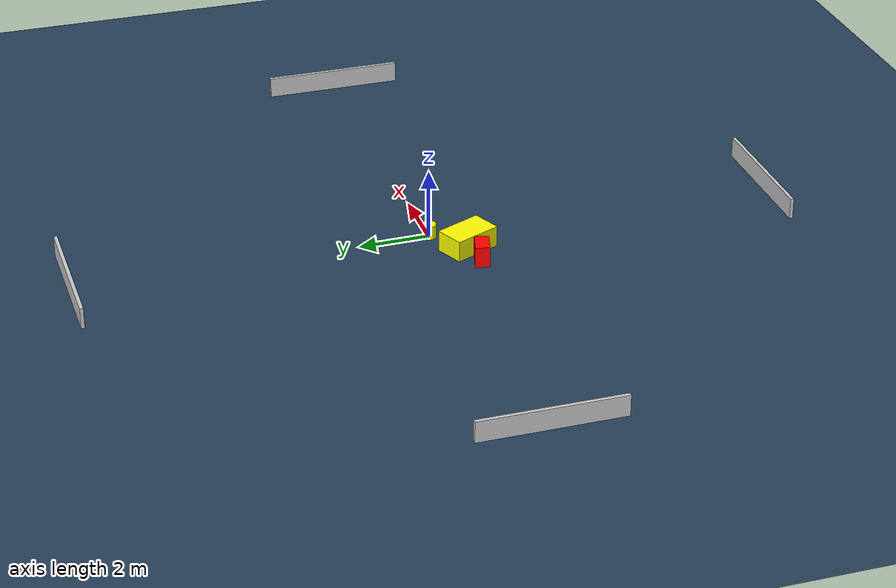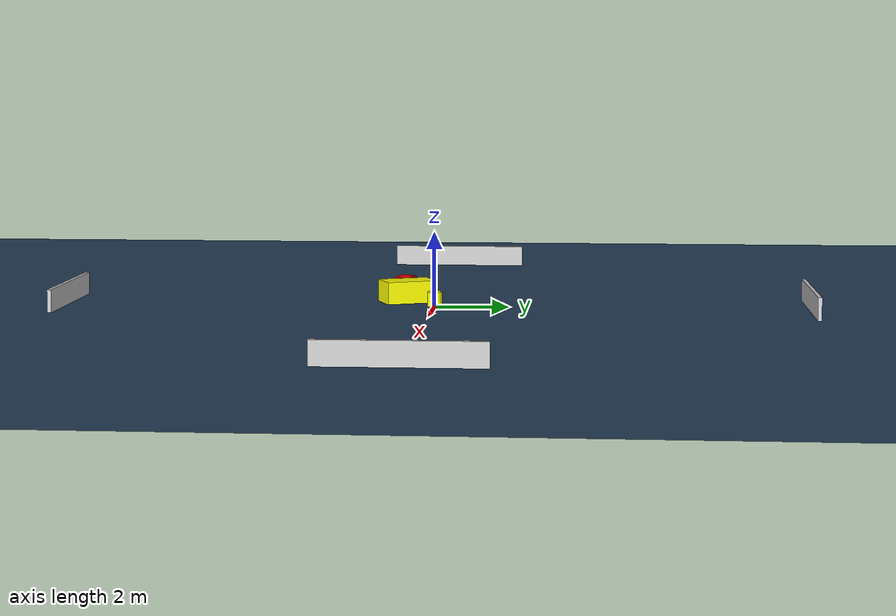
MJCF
<?xml version="1.0" ?>
<mujoco model="generated_environment">
  <option timestep="0.01" integrator="RK4" cone="elliptic"/>
  <default>
    <geom density="1"/>
  </default>
  <asset>
    <texture builtin="gradient" height="3072" name="skybox" rgb1="0.3 0.5 0.7" rgb2="0 0 0" type="skybox" width="512"/>
    <texture builtin="checker" height="300" name="groundplane" rgb1="0.2 0.3 0.4" rgb2="0.1 0.2 0.3" type="2d" width="300"/>
    <material name="groundplane" reflectance="0.2" texrepeat="5 5" texture="groundplane"/>
  </asset>
  <worldbody>
    <light dir="0 0 -1" directional="true" pos="0 0 1.5"/>
    <geom condim="3" friction="0.5 0.005 0.001" material="groundplane" name="floor" pos="0 0 0" size="0 0 0.05" type="plane"/>
    <body name="walls">
      <geom name="wall_1" condim="4" pos="-10.0 0.0 0.3" rgba="0.800000011920929 0.800000011920929 0.800000011920929 1.0" size="0.05 2.0 0.3" type="box"/>
      <geom name="wall_2" condim="4" pos="10.0 0.0 0.3" rgba="0.800000011920929 0.800000011920929 0.800000011920929 1.0" size="0.05 2.0 0.3" type="box"/>
      <geom name="wall_3" condim="4" pos="0.0 -10.0 0.3" rgba="0.800000011920929 0.800000011920929 0.800000011920929 1.0" size="2.0 0.05 0.3" type="box"/>
      <geom name="wall_4" condim="4" pos="0.0 10.0 0.3" rgba="0.800000011920929 0.800000011920929 0.800000011920929 1.0" size="2.0 0.05 0.3" type="box"/>
    </body>
    <body name="robot">
      <joint name="joint_x" type="slide" pos="0 0 0" axis="1 0 0"/>
      <joint name="joint_y" type="slide" pos="0 0 0" axis="0 1 0"/>
      <geom name="robot" type="cylinder" pos="0.0 0.0 0.2" size="0.2 0.2 0.0" mass="5.0" friction="1.0 0.005 0.0001" condim="4" rgba="1.0 1.0 0.0 1.0"/>
    </body>
    <body name="obstacle_1_movable">
      <geom name="obstacle_1_movable" condim="4" pos="-0.9257696247200526 -0.8229461958272515 0.3" euler="0 0 203.8470049368155" friction="0.0 0.005 0.001" rgba="1.0 1.0 0.0 1.0" size="0.42601432596655636 0.6911344232300355 0.3" type="box" mass="0.1"/>
      <joint type="free"/>
    </body>
    <body name="obstacle_2_static">
      <geom name="obstacle_2_static" condim="4" pos="-1.7508769771747925 -0.9575707974890758 0.3" euler="0 0 344.92264008361735" friction="0.0 0.005 0.001" rgba="1.0 0.0 0.0 1.0" size="0.3228905292845758 0.20313118051189943 0.3" type="box"/>
    </body>
  </worldbody>
  <actuator>
    <motor name="actuator_x" joint="joint_x" gear="1" ctrlrange="-1 1"/>
    <motor name="actuator_y" joint="joint_y" gear="1" ctrlrange="-1 1"/>
  </actuator>
</mujoco>
